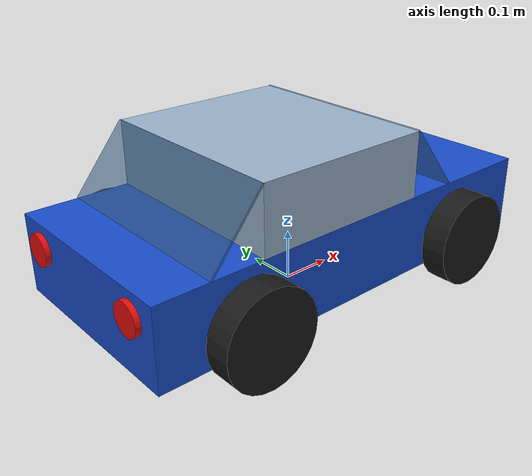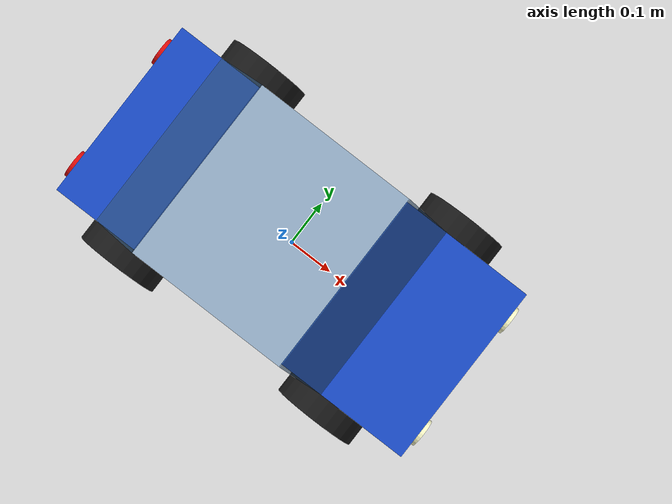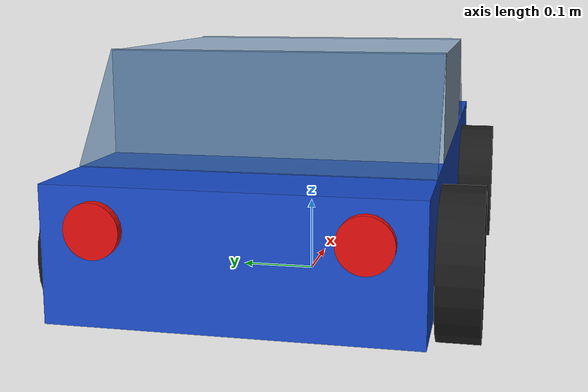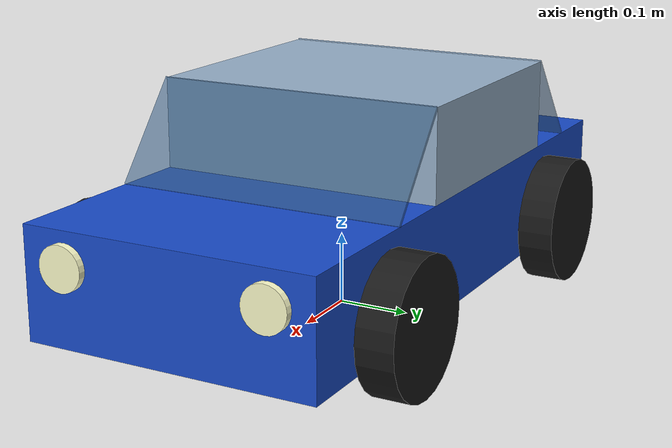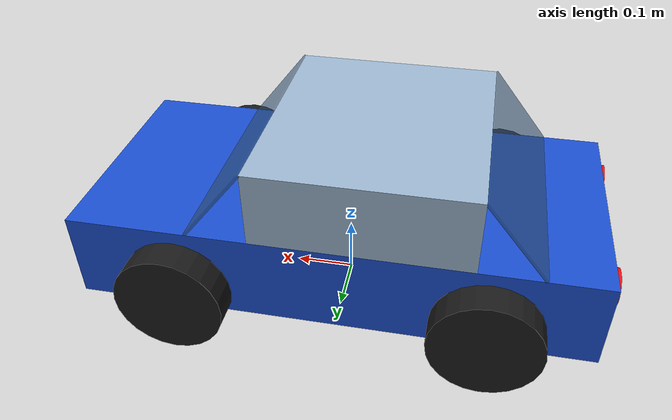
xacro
<?xml version="1.0"?>
<robot name="ugv_sedan" xmlns:xacro="http://ros.org/wiki/xacro">

  <!-- ===================== GAZEBO DIFF-DRIVE PLUGIN ===================== -->
  <gazebo>
    <plugin name="diff_drive_controller" filename="libgazebo_ros_diff_drive.so">

      <update_rate>50</update_rate>
      <num_wheel_pairs>2</num_wheel_pairs>

      <!-- Left Wheels -->
      <left_joint>front_left_wheel_joint</left_joint>
      <left_joint>rear_left_wheel_joint</left_joint>

      <!-- Right Wheels -->
      <right_joint>front_right_wheel_joint</right_joint>
      <right_joint>rear_right_wheel_joint</right_joint>

      <!-- Kinematics (Exact match to URDF wheel_y * 2) -->
      <wheel_separation>0.45</wheel_separation>
      <wheel_diameter>0.18</wheel_diameter>

      <!-- Balanced Torque & Acceleration for Controlled Tight Arcs -->
      <max_wheel_torque>300</max_wheel_torque>
      <max_wheel_acceleration>20.0</max_wheel_acceleration>

      <!-- Topic & Frames -->
      <command_topic>cmd_vel</command_topic>
      <odometry_topic>odom</odometry_topic>
      <odometry_frame>odom</odometry_frame>
      <robot_base_frame>base_footprint</robot_base_frame>

      <!-- Flags -->
      <publish_odom>true</publish_odom>
      <publish_odom_tf>true</publish_odom_tf>
      <publish_wheel_tf>true</publish_wheel_tf>

    </plugin>
  </gazebo>

  <!-- ===================== PROPERTIES ===================== -->
  <xacro:property name="PI" value="3.14159265359"/>

  <!-- Chassis -->
  <xacro:property name="chassis_l" value="0.85"/>
  <xacro:property name="chassis_w" value="0.40"/>
  <xacro:property name="chassis_h" value="0.15"/>
  <xacro:property name="chassis_m" value="3.0"/>

  <!-- Cabin -->
  <xacro:property name="cabin_l" value="0.35"/>
  <xacro:property name="cabin_w" value="0.40"/>
  <xacro:property name="cabin_h" value="0.125"/>
  <xacro:property name="cabin_m" value="1.0"/>
  <xacro:property name="cabin_x" value="-0.05"/>

  <!-- Glass -->
  <xacro:property name="glass_t" value="0.005"/>
  <xacro:property name="glass_m" value="0.1"/>
  <xacro:property name="glass_run" value="0.10"/>
  <xacro:property name="glass_len" value="${sqrt(glass_run*glass_run + cabin_h*cabin_h)}"/>
  <xacro:property name="glass_pitch" value="${atan2(glass_run, cabin_h)}"/>

  <!-- Wheels -->
  <xacro:property name="wheel_r" value="0.09"/>
  <xacro:property name="wheel_h" value="0.05"/>
  <xacro:property name="wheel_m" value="0.3"/>
  <xacro:property name="wheel_x" value="0.25"/>
  <xacro:property name="wheel_y" value="0.225"/>

  <!-- Lights -->
  <xacro:property name="light_r" value="0.03"/>
  <xacro:property name="light_t" value="0.01"/>
  <xacro:property name="light_m" value="0.015"/>
  <xacro:property name="light_y" value="0.14"/>

  <!-- Ground clearance -->
  <xacro:property name="clearance" value="0.05"/>
  <xacro:property name="base_z" value="${clearance + chassis_h/2}"/>

  <!-- ===================== MATERIALS ===================== -->
  <material name="body_blue">
    <color rgba="0.1 0.3 0.8 1.0"/>
  </material>
  <material name="cabin_grey">
    <color rgba="0.6 0.7 0.8 1.0"/>
  </material>
  <material name="glass">
    <color rgba="0.2 0.35 0.5 0.6"/>
  </material>
  <material name="wheel_black">
    <color rgba="0.1 0.1 0.1 1.0"/>
  </material>
  <material name="light_white">
    <color rgba="1.0 1.0 0.8 1.0"/>
  </material>
  <material name="light_red">
    <color rgba="0.9 0.05 0.05 1.0"/>
  </material>

  <!-- ===================== INERTIA MACROS ===================== -->
  <xacro:macro name="box_inertia" params="m x y z">
    <inertial>
      <mass value="${m}"/>
      <inertia ixx="${m/12.0*(y*y+z*z)}" ixy="0" ixz="0" iyy="${m/12.0*(x*x+z*z)}" iyz="0" izz="${m/12.0*(x*x+y*y)}"/>
    </inertial>
  </xacro:macro>

  <xacro:macro name="cylinder_inertia" params="m r h">
    <inertial>
      <mass value="${m}"/>
      <inertia ixx="${m/12.0*(3*r*r+h*h)}" ixy="0" ixz="0" iyy="${m/12.0*(3*r*r+h*h)}" iyz="0" izz="${m*r*r/2.0}"/>
    </inertial>
  </xacro:macro>

  <xacro:macro name="disc_x_inertia" params="m r h">
    <inertial>
      <mass value="${m}"/>
      <inertia ixx="${m*r*r/2.0}" ixy="0" ixz="0" iyy="${m/12.0*(3*r*r+h*h)}" iyz="0" izz="${m/12.0*(3*r*r+h*h)}"/>
    </inertial>
  </xacro:macro>

  <!-- ===================== LINKS & JOINTS ===================== -->
  <link name="base_footprint"/>

  <link name="base_link">
    <visual>
      <geometry>
        <box size="${chassis_l} ${chassis_w} ${chassis_h}"/>
      </geometry>
      <material name="body_blue"/>
    </visual>
    <collision>
      <geometry>
        <box size="${chassis_l} ${chassis_w} ${chassis_h}"/>
      </geometry>
    </collision>
    <xacro:box_inertia m="${chassis_m}" x="${chassis_l}" y="${chassis_w}" z="${chassis_h}"/>
  </link>

  <joint name="base_footprint_joint" type="fixed">
    <parent link="base_footprint"/>
    <child link="base_link"/>
    <origin xyz="0 0 ${base_z}" rpy="0 0 0"/>
  </joint>

  <!-- Cabin -->
  <link name="cabin_link">
    <visual>
      <geometry>
        <box size="${cabin_l} ${cabin_w} ${cabin_h}"/>
      </geometry>
      <material name="cabin_grey"/>
    </visual>
    <collision>
      <geometry>
        <box size="${cabin_l} ${cabin_w} ${cabin_h}"/>
      </geometry>
    </collision>
    <xacro:box_inertia m="${cabin_m}" x="${cabin_l}" y="${cabin_w}" z="${cabin_h}"/>
  </link>

  <joint name="cabin_joint" type="fixed">
    <parent link="base_link"/>
    <child link="cabin_link"/>
    <origin xyz="${cabin_x} 0 ${chassis_h/2 + cabin_h/2}" rpy="0 0 0"/>
  </joint>

  <!-- Glass Macro -->
  <xacro:macro name="glass_panel" params="name side slope">
    <link name="${name}_link">
      <visual>
        <geometry>
          <box size="${glass_t} ${cabin_w} ${glass_len}"/>
        </geometry>
        <material name="glass"/>
      </visual>
      <collision>
        <geometry>
          <box size="${glass_t} ${cabin_w} ${glass_len}"/>
        </geometry>
      </collision>
      <xacro:box_inertia m="${glass_m}" x="${glass_t}" y="${cabin_w}" z="${glass_len}"/>
    </link>

    <joint name="${name}_joint" type="fixed">
      <parent link="cabin_link"/>
      <child link="${name}_link"/>
      <origin xyz="${side*(cabin_l/2 + glass_run/2)} 0 0" rpy="0 ${slope*glass_pitch} 0"/>
    </joint>
  </xacro:macro>

  <xacro:glass_panel name="windshield" side="1" slope="-1"/>
  <xacro:glass_panel name="rear_window" side="-1" slope="1"/>

  <!-- Wheel Macro tuned for Moderate Friction and Small Turns -->
  <xacro:macro name="wheel" params="name x y">
    <link name="${name}_wheel_link">
      <visual>
        <origin xyz="0 0 0" rpy="${PI/2} 0 0"/>
        <geometry>
          <cylinder radius="${wheel_r}" length="${wheel_h}"/>
        </geometry>
        <material name="wheel_black"/>
      </visual>
      <collision>
        <origin xyz="0 0 0" rpy="${PI/2} 0 0"/>
        <geometry>
          <cylinder radius="${wheel_r}" length="${wheel_h}"/>
        </geometry>
      </collision>
      <xacro:cylinder_inertia m="${wheel_m}" r="${wheel_r}" h="${wheel_h}"/>
    </link>

    <joint name="${name}_wheel_joint" type="continuous">
      <parent link="base_link"/>
      <child link="${name}_wheel_link"/>
      <origin xyz="${x} ${y} ${wheel_r - base_z}" rpy="0 0 0"/>
      <axis xyz="0 1 0"/>
      <dynamics damping="0.05" friction="0.05"/>
    </joint>

    <gazebo reference="${name}_wheel_link">
      <mu1>0.3</mu1>
      <mu2>0.3</mu2>
      <slip1>0.2</slip1>
      <slip2>0.2</slip2>
      <kp>1000000.0</kp>
      <kd>100.0</kd>
    </gazebo>
  </xacro:macro>

  <xacro:wheel name="front_left" x="${wheel_x}" y="${wheel_y}"/>
  <xacro:wheel name="front_right" x="${wheel_x}" y="${-1*wheel_y}"/>
  <xacro:wheel name="rear_left" x="${-1*wheel_x}" y="${wheel_y}"/>
  <xacro:wheel name="rear_right" x="${-1*wheel_x}" y="${-1*wheel_y}"/>

  <!-- Light Macro -->
  <xacro:macro name="light" params="name x y material">
    <link name="${name}_light_link">
      <visual>
        <origin xyz="0 0 0" rpy="0 ${PI/2} 0"/>
        <geometry>
          <cylinder radius="${light_r}" length="${light_t}"/>
        </geometry>
        <material name="${material}"/>
      </visual>
      <collision>
        <origin xyz="0 0 0" rpy="0 ${PI/2} 0"/>
        <geometry>
          <cylinder radius="${light_r}" length="${light_t}"/>
        </geometry>
      </collision>
      <xacro:disc_x_inertia m="${light_m}" r="${light_r}" h="${light_t}"/>
    </link>

    <joint name="${name}_light_joint" type="fixed">
      <parent link="base_link"/>
      <child link="${name}_light_link"/>
      <origin xyz="${x} ${y} 0.03" rpy="0 0 0"/>
    </joint>
  </xacro:macro>

  <xacro:property name="light_x" value="${chassis_l/2 + light_t/2}"/>
  <xacro:light name="front_left" x="${light_x}" y="${light_y}" material="light_white"/>
  <xacro:light name="front_right" x="${light_x}" y="${-1*light_y}" material="light_white"/>
  <xacro:light name="rear_left" x="${-1*light_x}" y="${light_y}" material="light_red"/>
  <xacro:light name="rear_right" x="${-1*light_x}" y="${-1*light_y}" material="light_red"/>

</robot>
